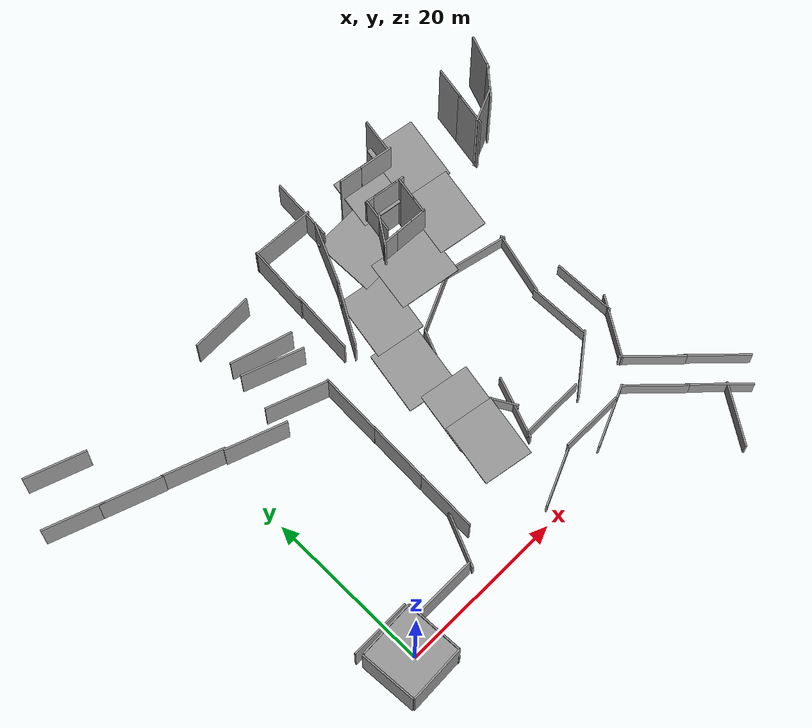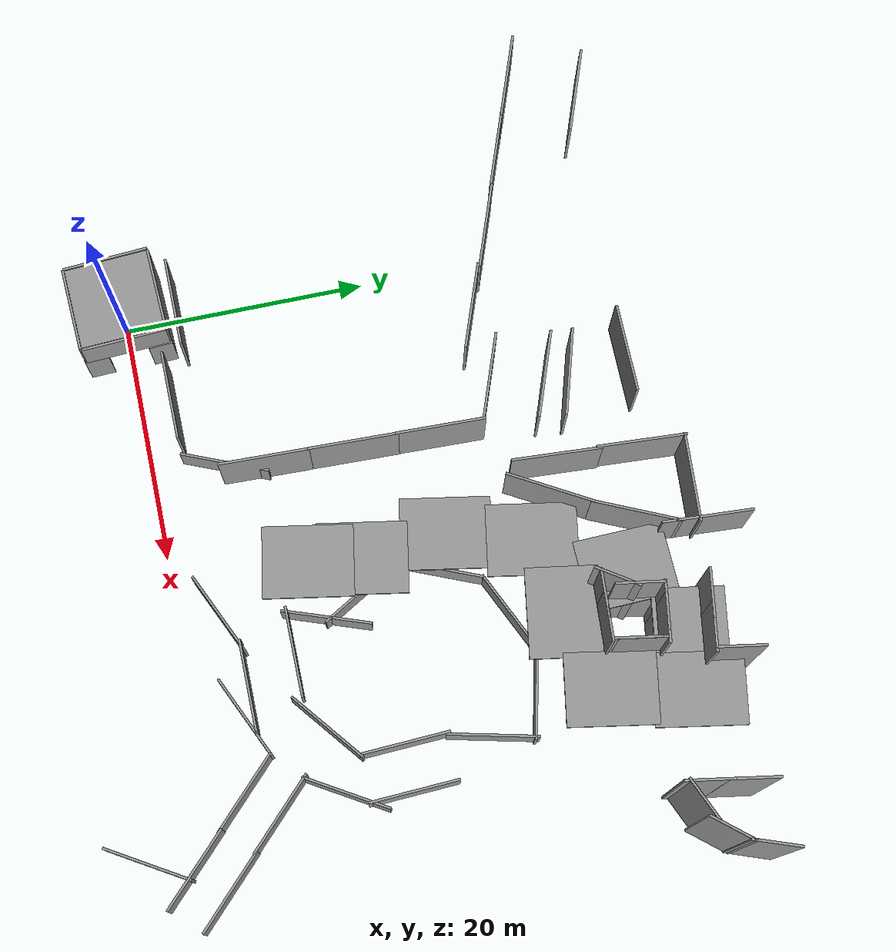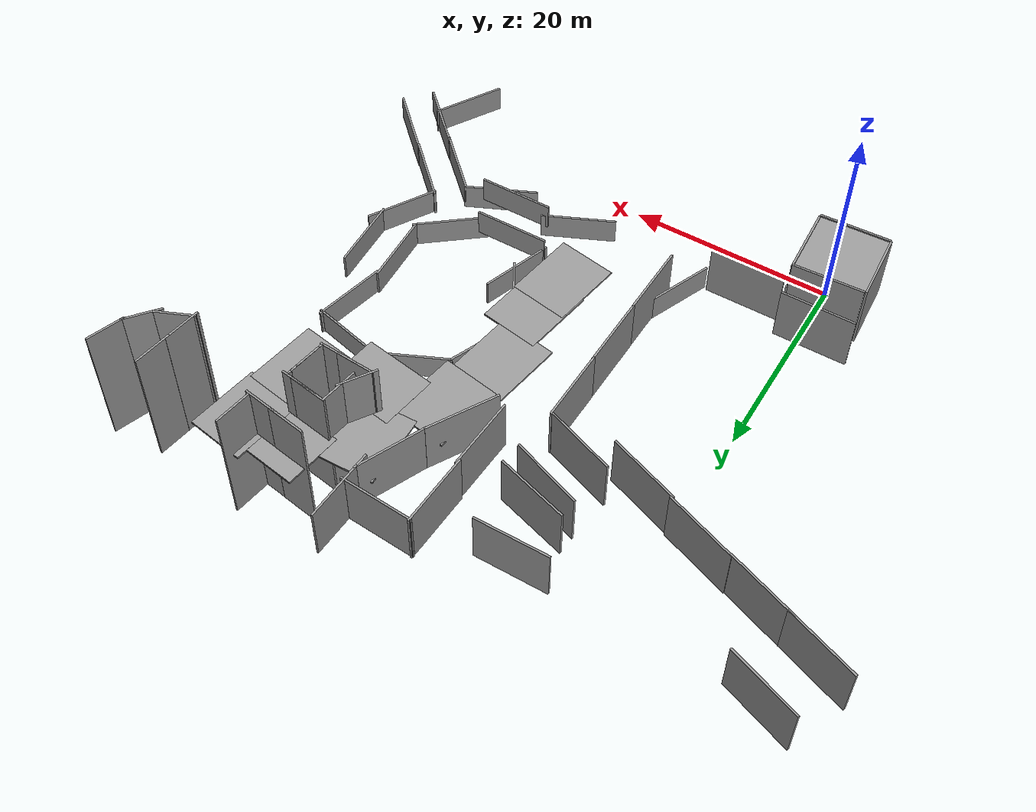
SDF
<sdf version="1.7">
 <world name="default">
  <model name="grey_wall">
   <static>1</static>
   <link name="link">
    <pose>0 0 0 0 -0 1.57</pose>
    <collision name="collision"><geometry><box><size>7 0.2 7</size></box></geometry></collision>
    <visual name="visual">
     <cast_shadows>0</cast_shadows>
     <geometry><box><size>7 0.2 7</size></box></geometry>
     <material>
      <script>
       <uri>model://grey_wall/materials/scripts</uri>
       <uri>model://grey_wall/materials/textures</uri>
       <name>vrc/grey_wall</name>
      </script>
     </material>
    </visual>
   </link>
   <pose>-4.21474 -0.21131 2.80388 0 -0 0.06614</pose>
  </model>
  <model name="grey_wall_clone">
   <static>1</static>
   <link name="link">
    <pose>0 0 0 0 -0 1.57</pose>
    <collision name="collision"><geometry><box><size>7 0.2 7</size></box></geometry></collision>
    <visual name="visual">
     <cast_shadows>0</cast_shadows>
     <geometry><box><size>7 0.2 7</size></box></geometry>
     <material>
      <script>
       <uri>model://grey_wall/materials/scripts</uri>
       <uri>model://grey_wall/materials/textures</uri>
       <name>vrc/grey_wall</name>
      </script>
     </material>
    </visual>
   </link>
   <pose>-0.45009 -3.58157 2.80388 0 -0 1.62041</pose>
  </model>
  <model name="grey_wall_clone_clone">
   <static>1</static>
   <link name="link">
    <pose>0 0 0 0 -0 1.57</pose>
    <collision name="collision"><geometry><box><size>7 0.2 7</size></box></geometry></collision>
    <visual name="visual">
     <cast_shadows>0</cast_shadows>
     <geometry><box><size>7 0.2 7</size></box></geometry>
     <material>
      <script>
       <uri>model://grey_wall/materials/scripts</uri>
       <uri>model://grey_wall/materials/textures</uri>
       <name>vrc/grey_wall</name>
      </script>
     </material>
    </visual>
   </link>
   <pose>-0.789169 3.46124 2.80388 0 -0 1.62041</pose>
  </model>
  <model name="grey_wall_0">
   <static>1</static>
   <link name="link">
    <pose>0 0 0 0 -0 1.57</pose>
    <collision name="collision"><geometry><box><size>7 0.2 3</size></box></geometry></collision>
    <visual name="visual">
     <cast_shadows>0</cast_shadows>
     <geometry><box><size>7 0.2 3</size></box></geometry>
     <material>
      <script>
       <uri>model://grey_wall/materials/scripts</uri>
       <uri>model://grey_wall/materials/textures</uri>
       <name>vrc/grey_wall</name>
      </script>
     </material>
    </visual>
   </link>
   <pose>2.8837 0.111936 4.63934 0 -0 0.05281</pose>
  </model>
  <model name="grey_wall_1">
   <static>1</static>
   <link name="link">
    <pose>0 0 0 0 -0 1.57</pose>
    <collision name="collision"><geometry><box><size>2 0.2 4</size></box></geometry></collision>
    <visual name="visual">
     <cast_shadows>0</cast_shadows>
     <geometry><box><size>2 0.2 4</size></box></geometry>
     <material>
      <script>
       <uri>model://grey_wall/materials/scripts</uri>
       <uri>model://grey_wall/materials/textures</uri>
       <name>vrc/grey_wall</name>
      </script>
     </material>
    </visual>
   </link>
   <pose>2.92834 -2.58106 1.18435 0 -0 0.04294</pose>
  </model>
  <model name="grey_wall_1_clone">
   <static>1</static>
   <link name="link">
    <pose>0 0 0 0 -0 1.57</pose>
    <collision name="collision"><geometry><box><size>2 0.2 4</size></box></geometry></collision>
    <visual name="visual">
     <cast_shadows>0</cast_shadows>
     <geometry><box><size>2 0.2 4</size></box></geometry>
     <material>
      <script>
       <uri>model://grey_wall/materials/scripts</uri>
       <uri>model://grey_wall/materials/textures</uri>
       <name>vrc/grey_wall</name>
      </script>
     </material>
    </visual>
   </link>
   <pose>2.84535 2.76369 1.18435 0 -0 0.06626</pose>
  </model>
  <model name="grey_wall_2">
   <static>1</static>
   <link name="link">
    <pose>0 0 0 1.57 -0 1.57</pose>
    <collision name="collision"><geometry><box><size>7 0.2 7</size></box></geometry></collision>
    <visual name="visual">
     <cast_shadows>0</cast_shadows>
     <geometry><box><size>7 0.2 7</size></box></geometry>
     <material>
      <script>
       <uri>model://grey_wall/materials/scripts</uri>
       <uri>model://grey_wall/materials/textures</uri>
       <name>vrc/grey_wall</name>
      </script>
     </material>
    </visual>
   </link>
   <pose>-0.748455 -0.059649 6.04997 0 -0 0.0551</pose>
  </model>
  <model name="grey_wall_3">
   <static>1</static>
   <link name="link">
    <pose>0 0 1.4 0 -0 0</pose>
    <collision name="collision"><geometry><box><size>7.5 0.2 2.8</size></box></geometry></collision>
    <visual name="visual">
     <cast_shadows>0</cast_shadows>
     <geometry><box><size>7.5 0.2 2.8</size></box></geometry>
     <material>
      <script>
       <uri>model://grey_wall/materials/scripts</uri>
       <uri>model://grey_wall/materials/textures</uri>
       <name>vrc/grey_wall</name>
      </script>
     </material>
    </visual>
   </link>
   <pose>36.6898 26.9895 -3.10734 0 0 -0.23228</pose>
  </model>
  <model name="grey_wall_3_clone">
   <static>1</static>
   <link name="link">
    <pose>0 0 1.4 0 -0 0</pose>
    <collision name="collision"><geometry><box><size>7.5 0.2 2.8</size></box></geometry></collision>
    <visual name="visual">
     <cast_shadows>0</cast_shadows>
     <geometry><box><size>7.5 0.2 2.8</size></box></geometry>
     <material>
      <script>
       <uri>model://grey_wall/materials/scripts</uri>
       <uri>model://grey_wall/materials/textures</uri>
       <name>vrc/grey_wall</name>
      </script>
     </material>
    </visual>
   </link>
   <pose>29.6771 8.62683 -1.75695 0 -0 0</pose>
  </model>
  <model name="grey_wall_3_clone_0">
   <static>1</static>
   <link name="link">
    <pose>0 0 1.4 0 -0 0</pose>
    <collision name="collision"><geometry><box><size>7.5 0.2 2.8</size></box></geometry></collision>
    <visual name="visual">
     <cast_shadows>0</cast_shadows>
     <geometry><box><size>7.5 0.2 2.8</size></box></geometry>
     <material>
      <script>
       <uri>model://grey_wall/materials/scripts</uri>
       <uri>model://grey_wall/materials/textures</uri>
       <name>vrc/grey_wall</name>
      </script>
     </material>
    </visual>
   </link>
   <pose>29.8267 26.3383 -3.10734 0 -0 0.42913</pose>
  </model>
  <model name="grey_wall_3_clone_1">
   <static>1</static>
   <link name="link">
    <pose>0 0 1.4 0 -0 0</pose>
    <collision name="collision"><geometry><box><size>7.5 0.2 2.8</size></box></geometry></collision>
    <visual name="visual">
     <cast_shadows>0</cast_shadows>
     <geometry><box><size>7.5 0.2 2.8</size></box></geometry>
     <material>
      <script>
       <uri>model://grey_wall/materials/scripts</uri>
       <uri>model://grey_wall/materials/textures</uri>
       <name>vrc/grey_wall</name>
      </script>
     </material>
    </visual>
   </link>
   <pose>25.1126 21.4242 -3.10734 0 0 -1.9675</pose>
  </model>
  <model name="grey_wall_3_clone_2">
   <static>1</static>
   <link name="link">
    <pose>0 0 1.4 0 -0 0</pose>
    <collision name="collision"><geometry><box><size>7.5 0.2 2.8</size></box></geometry></collision>
    <visual name="visual">
     <cast_shadows>0</cast_shadows>
     <geometry><box><size>7.5 0.2 2.8</size></box></geometry>
     <material>
      <script>
       <uri>model://grey_wall/materials/scripts</uri>
       <uri>model://grey_wall/materials/textures</uri>
       <name>vrc/grey_wall</name>
      </script>
     </material>
    </visual>
   </link>
   <pose>25.7291 14.8094 -3.10734 0 0 -1.04617</pose>
  </model>
  <model name="grey_wall_3_clone_2_clone">
   <static>1</static>
   <link name="link">
    <pose>0 0 1.4 0 -0 0</pose>
    <collision name="collision"><geometry><box><size>7.5 0.2 2.8</size></box></geometry></collision>
    <visual name="visual">
     <cast_shadows>0</cast_shadows>
     <geometry><box><size>7.5 0.2 2.8</size></box></geometry>
     <material>
      <script>
       <uri>model://grey_wall/materials/scripts</uri>
       <uri>model://grey_wall/materials/textures</uri>
       <name>vrc/grey_wall</name>
      </script>
     </material>
    </visual>
   </link>
   <pose>38.4258 15.8633 -3.10734 0 0 -1.5271</pose>
  </model>
  <model name="grey_wall_3_clone_2_clone_0">
   <static>1</static>
   <link name="link">
    <pose>0 0 1.4 0 -0 0</pose>
    <collision name="collision"><geometry><box><size>7.5 0.2 2.8</size></box></geometry></collision>
    <visual name="visual">
     <cast_shadows>0</cast_shadows>
     <geometry><box><size>7.5 0.2 2.8</size></box></geometry>
     <material>
      <script>
       <uri>model://grey_wall/materials/scripts</uri>
       <uri>model://grey_wall/materials/textures</uri>
       <name>vrc/grey_wall</name>
      </script>
     </material>
    </visual>
   </link>
   <pose>39.2763 22.8874 -3.10734 0 0 -1.80366</pose>
  </model>
  <model name="grey_wall_3_clone_2_clone_1">
   <static>1</static>
   <link name="link">
    <pose>0 0 1.4 0 -0 0</pose>
    <collision name="collision"><geometry><box><size>7.5 0.2 2.8</size></box></geometry></collision>
    <visual name="visual">
     <cast_shadows>0</cast_shadows>
     <geometry><box><size>7.5 0.2 2.8</size></box></geometry>
     <material>
      <script>
       <uri>model://grey_wall/materials/scripts</uri>
       <uri>model://grey_wall/materials/textures</uri>
       <name>vrc/grey_wall</name>
      </script>
     </material>
    </visual>
   </link>
   <pose>27.193 11.7026 -3.10734 0 0 -1.91355</pose>
  </model>
  <model name="grey_wall_3_clone_2_clone_2">
   <static>1</static>
   <link name="link">
    <pose>0 0 1.4 0 -0 0</pose>
    <collision name="collision"><geometry><box><size>7.5 0.2 2.8</size></box></geometry></collision>
    <visual name="visual">
     <cast_shadows>0</cast_shadows>
     <geometry><box><size>7.5 0.2 2.8</size></box></geometry>
     <material>
      <script>
       <uri>model://grey_wall/materials/scripts</uri>
       <uri>model://grey_wall/materials/textures</uri>
       <name>vrc/grey_wall</name>
      </script>
     </material>
    </visual>
   </link>
   <pose>35.906 10.0574 -3.10734 0 0 -2.47034</pose>
  </model>
  <model name="grey_wall_4_clone_0">
   <static>1</static>
   <link name="link">
    <pose>0 0 1.4 0 -0 0</pose>
    <collision name="collision"><geometry><box><size>7.5 0.2 6</size></box></geometry></collision>
    <visual name="visual">
     <cast_shadows>0</cast_shadows>
     <geometry><box><size>7.5 0.2 6</size></box></geometry>
     <material>
      <script>
       <uri>model://grey_wall/materials/scripts</uri>
       <uri>model://grey_wall/materials/textures</uri>
       <name>vrc/grey_wall</name>
      </script>
     </material>
    </visual>
   </link>
   <pose>10.8677 40.2516 -1.36031 0 -0 0</pose>
  </model>
  <model name="grey_wall_4_clone_5_clone_10">
   <static>1</static>
   <link name="link">
    <pose>0 0 1.4 0 -0 0</pose>
    <collision name="collision"><geometry><box><size>7.5 0.2 6</size></box></geometry></collision>
    <visual name="visual">
     <cast_shadows>0</cast_shadows>
     <geometry><box><size>7.5 0.2 6</size></box></geometry>
     <material>
      <script>
       <uri>model://grey_wall/materials/scripts</uri>
       <uri>model://grey_wall/materials/textures</uri>
       <name>vrc/grey_wall</name>
      </script>
     </material>
    </visual>
   </link>
   <pose>26.0391 43.3199 -1.36031 0 0 -1.63235</pose>
  </model>
  <model name="grey_wall_4_clone_5_clone_11">
   <static>1</static>
   <link name="link">
    <pose>0 0 1.4 0 -0 0</pose>
    <collision name="collision"><geometry><box><size>7.5 0.2 6</size></box></geometry></collision>
    <visual name="visual">
     <cast_shadows>0</cast_shadows>
     <geometry><box><size>7.5 0.2 6</size></box></geometry>
     <material>
      <script>
       <uri>model://grey_wall/materials/scripts</uri>
       <uri>model://grey_wall/materials/textures</uri>
       <name>vrc/grey_wall</name>
      </script>
     </material>
    </visual>
   </link>
   <pose>24.4499 37.8323 -1.36031 0 0 -1.99581</pose>
  </model>
  <model name="grey_wall_4_clone_5_clone_12">
   <static>1</static>
   <link name="link">
    <pose>0 0 1.4 0 -0 0</pose>
    <collision name="collision"><geometry><box><size>7.5 0.2 6</size></box></geometry></collision>
    <visual name="visual">
     <cast_shadows>0</cast_shadows>
     <geometry><box><size>7.5 0.2 6</size></box></geometry>
     <material>
      <script>
       <uri>model://grey_wall/materials/scripts</uri>
       <uri>model://grey_wall/materials/textures</uri>
       <name>vrc/grey_wall</name>
      </script>
     </material>
    </visual>
   </link>
   <pose>21.1469 31.4317 -1.36031 0 0 -2.09189</pose>
  </model>
  <model name="grey_wall_4_clone_5_clone_13">
   <static>1</static>
   <link name="link">
    <pose>0 0 1.4 0 -0 0</pose>
    <collision name="collision"><geometry><box><size>7.5 0.2 6</size></box></geometry></collision>
    <visual name="visual">
     <cast_shadows>0</cast_shadows>
     <geometry><box><size>7.5 0.2 6</size></box></geometry>
     <material>
      <script>
       <uri>model://grey_wall/materials/scripts</uri>
       <uri>model://grey_wall/materials/textures</uri>
       <name>vrc/grey_wall</name>
      </script>
     </material>
    </visual>
   </link>
   <pose>18.8306 39.5838 -1.36031 0 0 -1.63235</pose>
  </model>
  <model name="grey_wall_4_clone_5_clone_14">
   <static>1</static>
   <link name="link">
    <pose>0 0 1.4 0 -0 0</pose>
    <collision name="collision"><geometry><box><size>7.5 0.2 6</size></box></geometry></collision>
    <visual name="visual">
     <cast_shadows>0</cast_shadows>
     <geometry><box><size>7.5 0.2 6</size></box></geometry>
     <material>
      <script>
       <uri>model://grey_wall/materials/scripts</uri>
       <uri>model://grey_wall/materials/textures</uri>
       <name>vrc/grey_wall</name>
      </script>
     </material>
    </visual>
   </link>
   <pose>18.5329 32.5931 -1.36031 0 0 -1.63235</pose>
  </model>
  <model name="grey_wall_4_clone_5_clone_16">
   <static>1</static>
   <link name="link">
    <pose>0 0 1.4 0 -0 0</pose>
    <collision name="collision"><geometry><box><size>7.5 0.2 6</size></box></geometry></collision>
    <visual name="visual">
     <cast_shadows>0</cast_shadows>
     <geometry><box><size>7.5 0.2 6</size></box></geometry>
     <material>
      <script>
       <uri>model://grey_wall/materials/scripts</uri>
       <uri>model://grey_wall/materials/textures</uri>
       <name>vrc/grey_wall</name>
      </script>
     </material>
    </visual>
   </link>
   <pose>22.6409 42.8769 -1.36031 0 0 -0.067363</pose>
  </model>
  <model name="grey_wall_4_clone_0_clone">
   <static>1</static>
   <link name="link">
    <pose>0 0 1.4 0 -0 0</pose>
    <collision name="collision"><geometry><box><size>7.5 0.2 6</size></box></geometry></collision>
    <visual name="visual">
     <cast_shadows>0</cast_shadows>
     <geometry><box><size>7.5 0.2 6</size></box></geometry>
     <material>
      <script>
       <uri>model://grey_wall/materials/scripts</uri>
       <uri>model://grey_wall/materials/textures</uri>
       <name>vrc/grey_wall</name>
      </script>
     </material>
    </visual>
   </link>
   <pose>11.8576 35.1709 -1.36031 0 0 -0.293082</pose>
  </model>
  <model name="grey_wall_4_clone_0_clone_0">
   <static>1</static>
   <link name="link">
    <pose>0 0 1.4 0 -0 0</pose>
    <collision name="collision"><geometry><box><size>7.5 0.2 6</size></box></geometry></collision>
    <visual name="visual">
     <cast_shadows>0</cast_shadows>
     <geometry><box><size>7.5 0.2 6</size></box></geometry>
     <material>
      <script>
       <uri>model://grey_wall/materials/scripts</uri>
       <uri>model://grey_wall/materials/textures</uri>
       <name>vrc/grey_wall</name>
      </script>
     </material>
    </visual>
   </link>
   <pose>11.6182 33.1775 -1.36031 0 0 -0.351253</pose>
  </model>
  <model name="grey_wall_4_clone_0_clone_1">
   <static>1</static>
   <link name="link">
    <pose>0 0 1.4 0 -0 0</pose>
    <collision name="collision"><geometry><box><size>7.5 0.2 6</size></box></geometry></collision>
    <visual name="visual">
     <cast_shadows>0</cast_shadows>
     <geometry><box><size>7.5 0.2 6</size></box></geometry>
     <material>
      <script>
       <uri>model://grey_wall/materials/scripts</uri>
       <uri>model://grey_wall/materials/textures</uri>
       <name>vrc/grey_wall</name>
      </script>
     </material>
    </visual>
   </link>
   <pose>14.2703 23.8615 -1.36031 0 0 -1.59956</pose>
  </model>
  <model name="grey_wall_4_clone_0_clone_1_clone">
   <static>1</static>
   <link name="link">
    <pose>0 0 1.4 0 -0 0</pose>
    <collision name="collision"><geometry><box><size>7.5 0.2 6</size></box></geometry></collision>
    <visual name="visual">
     <cast_shadows>0</cast_shadows>
     <geometry><box><size>7.5 0.2 6</size></box></geometry>
     <material>
      <script>
       <uri>model://grey_wall/materials/scripts</uri>
       <uri>model://grey_wall/materials/textures</uri>
       <name>vrc/grey_wall</name>
      </script>
     </material>
    </visual>
   </link>
   <pose>14.0835 16.6333 -1.36031 0 0 -1.59956</pose>
  </model>
  <model name="grey_wall_4_clone_0_clone_1_clone_0">
   <static>1</static>
   <link name="link">
    <pose>0 0 1.4 0 -0 0</pose>
    <collision name="collision"><geometry><box><size>7.5 0.2 6</size></box></geometry></collision>
    <visual name="visual">
     <cast_shadows>0</cast_shadows>
     <geometry><box><size>7.5 0.2 6</size></box></geometry>
     <material>
      <script>
       <uri>model://grey_wall/materials/scripts</uri>
       <uri>model://grey_wall/materials/textures</uri>
       <name>vrc/grey_wall</name>
      </script>
     </material>
    </visual>
   </link>
   <pose>13.889 9.28364 -1.36031 0 0 -1.59956</pose>
  </model>
  <model name="grey_wall_4_clone_0_clone_0_clone">
   <static>1</static>
   <link name="link">
    <pose>0 0 1.4 0 -0 0</pose>
    <collision name="collision"><geometry><box><size>7.5 0.2 6</size></box></geometry></collision>
    <visual name="visual">
     <cast_shadows>0</cast_shadows>
     <geometry><box><size>7.5 0.2 6</size></box></geometry>
     <material>
      <script>
       <uri>model://grey_wall/materials/scripts</uri>
       <uri>model://grey_wall/materials/textures</uri>
       <name>vrc/grey_wall</name>
      </script>
     </material>
    </visual>
   </link>
   <pose>10.9004 28.6993 -1.36031 0 0 -0.351253</pose>
  </model>
  <model name="grey_wall_4_clone_0_clone_0_clone_0">
   <static>1</static>
   <link name="link">
    <pose>0 0 1.4 0 -0 0</pose>
    <collision name="collision"><geometry><box><size>7.5 0.2 6</size></box></geometry></collision>
    <visual name="visual">
     <cast_shadows>0</cast_shadows>
     <geometry><box><size>7.5 0.2 6</size></box></geometry>
     <material>
      <script>
       <uri>model://grey_wall/materials/scripts</uri>
       <uri>model://grey_wall/materials/textures</uri>
       <name>vrc/grey_wall</name>
      </script>
     </material>
    </visual>
   </link>
   <pose>4.61691 28.5572 -1.36031 0 0 -0.351253</pose>
  </model>
  <model name="grey_wall_4_clone_0_clone_0_clone_1">
   <static>1</static>
   <link name="link">
    <pose>0 0 1.4 0 -0 0</pose>
    <collision name="collision"><geometry><box><size>7.5 0.2 6</size></box></geometry></collision>
    <visual name="visual">
     <cast_shadows>0</cast_shadows>
     <geometry><box><size>7.5 0.2 6</size></box></geometry>
     <material>
      <script>
       <uri>model://grey_wall/materials/scripts</uri>
       <uri>model://grey_wall/materials/textures</uri>
       <name>vrc/grey_wall</name>
      </script>
     </material>
    </visual>
   </link>
   <pose>-2.08883 31.1935 -1.36031 0 0 -0.351253</pose>
  </model>
  <model name="grey_wall_4_clone_0_clone_0_clone_2">
   <static>1</static>
   <link name="link">
    <pose>0 0 1.4 0 -0 0</pose>
    <collision name="collision"><geometry><box><size>7.5 0.2 6</size></box></geometry></collision>
    <visual name="visual">
     <cast_shadows>0</cast_shadows>
     <geometry><box><size>7.5 0.2 6</size></box></geometry>
     <material>
      <script>
       <uri>model://grey_wall/materials/scripts</uri>
       <uri>model://grey_wall/materials/textures</uri>
       <name>vrc/grey_wall</name>
      </script>
     </material>
    </visual>
   </link>
   <pose>-8.90977 33.6237 -1.36031 0 0 -0.351253</pose>
  </model>
  <model name="grey_wall_4_clone_0_clone_0_clone_3">
   <static>1</static>
   <link name="link">
    <pose>0 0 1.4 0 -0 0</pose>
    <collision name="collision"><geometry><box><size>7.5 0.2 6</size></box></geometry></collision>
    <visual name="visual">
     <cast_shadows>0</cast_shadows>
     <geometry><box><size>7.5 0.2 6</size></box></geometry>
     <material>
      <script>
       <uri>model://grey_wall/materials/scripts</uri>
       <uri>model://grey_wall/materials/textures</uri>
       <name>vrc/grey_wall</name>
      </script>
     </material>
    </visual>
   </link>
   <pose>-15.1705 35.9303 -1.36031 0 0 -0.351253</pose>
  </model>
  <model name="grey_wall_4_clone_0_clone_0_clone_4">
   <static>1</static>
   <link name="link">
    <pose>0 0 1.4 0 -0 0</pose>
    <collision name="collision"><geometry><box><size>7.5 0.2 6</size></box></geometry></collision>
    <visual name="visual">
     <cast_shadows>0</cast_shadows>
     <geometry><box><size>7.5 0.2 6</size></box></geometry>
     <material>
      <script>
       <uri>model://grey_wall/materials/scripts</uri>
       <uri>model://grey_wall/materials/textures</uri>
       <name>vrc/grey_wall</name>
      </script>
     </material>
    </visual>
   </link>
   <pose>-12.7232 41.42 -1.36031 0 0 -0.351253</pose>
  </model>
  <model name="grey_wall_4_clone_0_clone_0_clone_6">
   <static>1</static>
   <link name="link">
    <pose>0 0 1.4 0 -0 0</pose>
    <collision name="collision"><geometry><box><size>7.5 0.2 6</size></box></geometry></collision>
    <visual name="visual">
     <cast_shadows>0</cast_shadows>
     <geometry><box><size>7.5 0.2 6</size></box></geometry>
     <material>
      <script>
       <uri>model://grey_wall/materials/scripts</uri>
       <uri>model://grey_wall/materials/textures</uri>
       <name>vrc/grey_wall</name>
      </script>
     </material>
    </visual>
   </link>
   <pose>-0.78334 4.38162 -1.36031 0 -0 0.004291</pose>
  </model>
  <model name="grey_wall_4_clone_0_clone_0_clone_6_clone">
   <static>1</static>
   <link name="link">
    <pose>0 0 1.4 0 -0 0</pose>
    <collision name="collision"><geometry><box><size>7.5 0.2 6</size></box></geometry></collision>
    <visual name="visual">
     <cast_shadows>0</cast_shadows>
     <geometry><box><size>7.5 0.2 6</size></box></geometry>
     <material>
      <script>
       <uri>model://grey_wall/materials/scripts</uri>
       <uri>model://grey_wall/materials/textures</uri>
       <name>vrc/grey_wall</name>
      </script>
     </material>
    </visual>
   </link>
   <pose>7.1515 2.73217 -1.36031 0 -0 0.004291</pose>
  </model>
  <model name="grey_wall_3_clone_1_clone">
   <static>1</static>
   <link name="link">
    <pose>0 0 1.4 0 -0 0</pose>
    <collision name="collision"><geometry><box><size>7.5 0.2 2.8</size></box></geometry></collision>
    <visual name="visual">
     <cast_shadows>0</cast_shadows>
     <geometry><box><size>7.5 0.2 2.8</size></box></geometry>
     <material>
      <script>
       <uri>model://grey_wall/materials/scripts</uri>
       <uri>model://grey_wall/materials/textures</uri>
       <name>vrc/grey_wall</name>
      </script>
     </material>
    </visual>
   </link>
   <pose>12.7235 5.94853 -3.10734 0 0 -1.9675</pose>
  </model>
  <model name="grey_wall_5">
   <static>1</static>
   <link name="link">
    <pose>0 0 1.4 0 -0 0</pose>
    <collision name="collision"><geometry><box><size>4 0.2 14</size></box></geometry></collision>
    <visual name="visual">
     <cast_shadows>0</cast_shadows>
     <geometry><box><size>4 0.2 14</size></box></geometry>
     <material>
      <script>
       <uri>model://grey_wall/materials/scripts</uri>
       <uri>model://grey_wall/materials/textures</uri>
       <name>vrc/grey_wall</name>
      </script>
     </material>
    </visual>
   </link>
   <pose>32.8154 33.2652 -2.67193 0 0 -0.060647</pose>
  </model>
  <model name="grey_wall_5_clone">
   <static>1</static>
   <link name="link">
    <pose>0 0 1.4 0 -0 0</pose>
    <collision name="collision"><geometry><box><size>4 0.2 14</size></box></geometry></collision>
    <visual name="visual">
     <cast_shadows>0</cast_shadows>
     <geometry><box><size>4 0.2 14</size></box></geometry>
     <material>
      <script>
       <uri>model://grey_wall/materials/scripts</uri>
       <uri>model://grey_wall/materials/textures</uri>
       <name>vrc/grey_wall</name>
      </script>
     </material>
    </visual>
   </link>
   <pose>30.9446 33.3905 -2.67193 0 0 -0.060647</pose>
  </model>
  <model name="grey_wall_5_clone_0">
   <static>1</static>
   <link name="link">
    <pose>0 0 1.4 0 -0 0</pose>
    <collision name="collision"><geometry><box><size>4 0.2 14</size></box></geometry></collision>
    <visual name="visual">
     <cast_shadows>0</cast_shadows>
     <geometry><box><size>4 0.2 14</size></box></geometry>
     <material>
      <script>
       <uri>model://grey_wall/materials/scripts</uri>
       <uri>model://grey_wall/materials/textures</uri>
       <name>vrc/grey_wall</name>
      </script>
     </material>
    </visual>
   </link>
   <pose>33.8551 37.7475 -2.67193 0 0 -0.158292</pose>
  </model>
  <model name="grey_wall_5_clone_0_clone">
   <static>1</static>
   <link name="link">
    <pose>0 0 1.4 0 -0 0</pose>
    <collision name="collision"><geometry><box><size>4 0.2 14</size></box></geometry></collision>
    <visual name="visual">
     <cast_shadows>0</cast_shadows>
     <geometry><box><size>4 0.2 14</size></box></geometry>
     <material>
      <script>
       <uri>model://grey_wall/materials/scripts</uri>
       <uri>model://grey_wall/materials/textures</uri>
       <name>vrc/grey_wall</name>
      </script>
     </material>
    </visual>
   </link>
   <pose>32.8311 37.9119 -2.67193 0 0 -0.158292</pose>
  </model>
  <model name="grey_wall_5_clone_0_clone_0">
   <static>1</static>
   <link name="link">
    <pose>0 0 1.4 0 -0 0</pose>
    <collision name="collision"><geometry><box><size>4 0.2 14</size></box></geometry></collision>
    <visual name="visual">
     <cast_shadows>0</cast_shadows>
     <geometry><box><size>4 0.2 14</size></box></geometry>
     <material>
      <script>
       <uri>model://grey_wall/materials/scripts</uri>
       <uri>model://grey_wall/materials/textures</uri>
       <name>vrc/grey_wall</name>
      </script>
     </material>
    </visual>
   </link>
   <pose>34.9781 35.5498 -2.67193 0 -0 1.40604</pose>
  </model>
  <model name="grey_wall_5_clone_0_clone_0_clone">
   <static>1</static>
   <link name="link">
    <pose>0 0 1.4 0 -0 0</pose>
    <collision name="collision"><geometry><box><size>4 0.2 14</size></box></geometry></collision>
    <visual name="visual">
     <cast_shadows>0</cast_shadows>
     <geometry><box><size>4 0.2 14</size></box></geometry>
     <material>
      <script>
       <uri>model://grey_wall/materials/scripts</uri>
       <uri>model://grey_wall/materials/textures</uri>
       <name>vrc/grey_wall</name>
      </script>
     </material>
    </visual>
   </link>
   <pose>34.8851 35.0596 -2.67193 0 -0 1.40604</pose>
  </model>
  <model name="grey_wall_5_clone_0_clone_0_clone_0">
   <static>1</static>
   <link name="link">
    <pose>0 0 1.4 0 -0 0</pose>
    <collision name="collision"><geometry><box><size>4 0.2 14</size></box></geometry></collision>
    <visual name="visual">
     <cast_shadows>0</cast_shadows>
     <geometry><box><size>4 0.2 14</size></box></geometry>
     <material>
      <script>
       <uri>model://grey_wall/materials/scripts</uri>
       <uri>model://grey_wall/materials/textures</uri>
       <name>vrc/grey_wall</name>
      </script>
     </material>
    </visual>
   </link>
   <pose>30.7061 36.2916 -2.67193 0 -0 1.40604</pose>
  </model>
  <model name="grey_wall_5_clone_0_clone_0_clone_1">
   <static>1</static>
   <link name="link">
    <pose>0 0 1.4 0 -0 0</pose>
    <collision name="collision"><geometry><box><size>4 0.2 14</size></box></geometry></collision>
    <visual name="visual">
     <cast_shadows>0</cast_shadows>
     <geometry><box><size>4 0.2 14</size></box></geometry>
     <material>
      <script>
       <uri>model://grey_wall/materials/scripts</uri>
       <uri>model://grey_wall/materials/textures</uri>
       <name>vrc/grey_wall</name>
      </script>
     </material>
    </visual>
   </link>
   <pose>29.862 34.6877 -2.67193 0 -0 0.982677</pose>
  </model>
  <model name="grey_wall_5_clone_0_clone_clone">
   <static>1</static>
   <link name="link">
    <pose>0 0 1.4 0 -0 0</pose>
    <collision name="collision"><geometry><box><size>4 0.2 14</size></box></geometry></collision>
    <visual name="visual">
     <cast_shadows>0</cast_shadows>
     <geometry><box><size>4 0.2 14</size></box></geometry>
     <material>
      <script>
       <uri>model://grey_wall/materials/scripts</uri>
       <uri>model://grey_wall/materials/textures</uri>
       <name>vrc/grey_wall</name>
      </script>
     </material>
    </visual>
   </link>
   <pose>35.3055 41.1248 -2.67193 0 0 -0.158292</pose>
  </model>
  <model name="grey_wall_5_clone_0_clone_clone_0">
   <static>1</static>
   <link name="link">
    <pose>0 0 1.4 0 -0 0</pose>
    <collision name="collision"><geometry><box><size>4 0.2 14</size></box></geometry></collision>
    <visual name="visual">
     <cast_shadows>0</cast_shadows>
     <geometry><box><size>4 0.2 14</size></box></geometry>
     <material>
      <script>
       <uri>model://grey_wall/materials/scripts</uri>
       <uri>model://grey_wall/materials/textures</uri>
       <name>vrc/grey_wall</name>
      </script>
     </material>
    </visual>
   </link>
   <pose>32.5983 41.5743 -2.67193 0 0 -0.158292</pose>
  </model>
  <model name="grey_wall_5_clone_0_clone_0_clone_clone_0">
   <static>1</static>
   <link name="link">
    <pose>0 0 1.4 0 -0 0</pose>
    <collision name="collision"><geometry><box><size>4 0.2 14</size></box></geometry></collision>
    <visual name="visual">
     <cast_shadows>0</cast_shadows>
     <geometry><box><size>4 0.2 14</size></box></geometry>
     <material>
      <script>
       <uri>model://grey_wall/materials/scripts</uri>
       <uri>model://grey_wall/materials/textures</uri>
       <name>vrc/grey_wall</name>
      </script>
     </material>
    </visual>
   </link>
   <pose>37.1944 42.8134 -2.67193 0 -0 1.40604</pose>
  </model>
  <model name="grey_wall_3_clone_2_clone_clone">
   <static>1</static>
   <link name="link">
    <pose>0 0 1.4 0 -0 0</pose>
    <collision name="collision"><geometry><box><size>7.5 0.2 2.8</size></box></geometry></collision>
    <visual name="visual">
     <cast_shadows>0</cast_shadows>
     <geometry><box><size>7.5 0.2 2.8</size></box></geometry>
     <material>
      <script>
       <uri>model://grey_wall/materials/scripts</uri>
       <uri>model://grey_wall/materials/textures</uri>
       <name>vrc/grey_wall</name>
      </script>
     </material>
    </visual>
   </link>
   <pose>42.2982 15.8318 -3.10734 0 0 -1.5271</pose>
  </model>
  <model name="grey_wall_3_clone_2_clone_2_clone">
   <static>1</static>
   <link name="link">
    <pose>0 0 1.4 0 -0 0</pose>
    <collision name="collision"><geometry><box><size>7.5 0.2 2.8</size></box></geometry></collision>
    <visual name="visual">
     <cast_shadows>0</cast_shadows>
     <geometry><box><size>7.5 0.2 2.8</size></box></geometry>
     <material>
      <script>
       <uri>model://grey_wall/materials/scripts</uri>
       <uri>model://grey_wall/materials/textures</uri>
       <name>vrc/grey_wall</name>
      </script>
     </material>
    </visual>
   </link>
   <pose>41.3091 10.5346 -3.10734 0 0 -2.11144</pose>
  </model>
  <model name="grey_wall_3_clone_2_clone_2_clone_0">
   <static>1</static>
   <link name="link">
    <pose>0 0 1.4 0 -0 0</pose>
    <collision name="collision"><geometry><box><size>7.5 0.2 2.8</size></box></geometry></collision>
    <visual name="visual">
     <cast_shadows>0</cast_shadows>
     <geometry><box><size>7.5 0.2 2.8</size></box></geometry>
     <material>
      <script>
       <uri>model://grey_wall/materials/scripts</uri>
       <uri>model://grey_wall/materials/textures</uri>
       <name>vrc/grey_wall</name>
      </script>
     </material>
    </visual>
   </link>
   <pose>33.7883 3.76654 -3.10734 0 0 -2.71756</pose>
  </model>
  <model name="grey_wall_3_clone_clone">
   <static>1</static>
   <link name="link">
    <pose>0 0 1.4 0 -0 0</pose>
    <collision name="collision"><geometry><box><size>7.5 0.2 2.8</size></box></geometry></collision>
    <visual name="visual">
     <cast_shadows>0</cast_shadows>
     <geometry><box><size>7.5 0.2 2.8</size></box></geometry>
     <material>
      <script>
       <uri>model://grey_wall/materials/scripts</uri>
       <uri>model://grey_wall/materials/textures</uri>
       <name>vrc/grey_wall</name>
      </script>
     </material>
    </visual>
   </link>
   <pose>31.5653 4.54682 -1.75695 0 -0 0</pose>
  </model>
  <model name="grey_wall_3_clone_2_clone_2_clone_0_clone">
   <static>1</static>
   <link name="link">
    <pose>0 0 1.4 0 -0 0</pose>
    <collision name="collision"><geometry><box><size>7.5 0.2 2.8</size></box></geometry></collision>
    <visual name="visual">
     <cast_shadows>0</cast_shadows>
     <geometry><box><size>7.5 0.2 2.8</size></box></geometry>
     <material>
      <script>
       <uri>model://grey_wall/materials/scripts</uri>
       <uri>model://grey_wall/materials/textures</uri>
       <name>vrc/grey_wall</name>
      </script>
     </material>
    </visual>
   </link>
   <pose>25.1216 3.20359 -3.10734 0 0 -2.71756</pose>
  </model>
  <model name="grey_wall_3_clone_2_clone_3">
   <static>1</static>
   <link name="link">
    <pose>0 0 1.4 0 -0 0</pose>
    <collision name="collision"><geometry><box><size>7.5 0.2 2.8</size></box></geometry></collision>
    <visual name="visual">
     <cast_shadows>0</cast_shadows>
     <geometry><box><size>7.5 0.2 2.8</size></box></geometry>
     <material>
      <script>
       <uri>model://grey_wall/materials/scripts</uri>
       <uri>model://grey_wall/materials/textures</uri>
       <name>vrc/grey_wall</name>
      </script>
     </material>
    </visual>
   </link>
   <pose>41.8874 5.10714 -3.10734 0 0 -0.776043</pose>
  </model>
  <model name="grey_wall_3_clone_2_clone_3_clone">
   <static>1</static>
   <link name="link">
    <pose>0 0 1.4 0 -0 0</pose>
    <collision name="collision"><geometry><box><size>7.5 0.2 2.8</size></box></geometry></collision>
    <visual name="visual">
     <cast_shadows>0</cast_shadows>
     <geometry><box><size>7.5 0.2 2.8</size></box></geometry>
     <material>
      <script>
       <uri>model://grey_wall/materials/scripts</uri>
       <uri>model://grey_wall/materials/textures</uri>
       <name>vrc/grey_wall</name>
      </script>
     </material>
    </visual>
   </link>
   <pose>46.9974 0.18791 -3.10734 0 0 -0.776043</pose>
  </model>
  <model name="grey_wall_3_clone_2_clone_3_clone_0">
   <static>1</static>
   <link name="link">
    <pose>0 0 1.4 0 -0 0</pose>
    <collision name="collision"><geometry><box><size>7.5 0.2 2.8</size></box></geometry></collision>
    <visual name="visual">
     <cast_shadows>0</cast_shadows>
     <geometry><box><size>7.5 0.2 2.8</size></box></geometry>
     <material>
      <script>
       <uri>model://grey_wall/materials/scripts</uri>
       <uri>model://grey_wall/materials/textures</uri>
       <name>vrc/grey_wall</name>
      </script>
     </material>
    </visual>
   </link>
   <pose>39.6727 2.66865 -3.10734 0 0 -0.776043</pose>
  </model>
  <model name="grey_wall_3_clone_2_clone_3_clone_1">
   <static>1</static>
   <link name="link">
    <pose>0 0 1.4 0 -0 0</pose>
    <collision name="collision"><geometry><box><size>7.5 0.2 2.8</size></box></geometry></collision>
    <visual name="visual">
     <cast_shadows>0</cast_shadows>
     <geometry><box><size>7.5 0.2 2.8</size></box></geometry>
     <material>
      <script>
       <uri>model://grey_wall/materials/scripts</uri>
       <uri>model://grey_wall/materials/textures</uri>
       <name>vrc/grey_wall</name>
      </script>
     </material>
    </visual>
   </link>
   <pose>44.743 -2.23438 -3.10734 0 0 -0.776043</pose>
  </model>
  <model name="grey_wall_3_clone_2_clone_2_clone_clone">
   <static>1</static>
   <link name="link">
    <pose>0 0 1.4 0 -0 0</pose>
    <collision name="collision"><geometry><box><size>7.5 0.2 2.8</size></box></geometry></collision>
    <visual name="visual">
     <cast_shadows>0</cast_shadows>
     <geometry><box><size>7.5 0.2 2.8</size></box></geometry>
     <material>
      <script>
       <uri>model://grey_wall/materials/scripts</uri>
       <uri>model://grey_wall/materials/textures</uri>
       <name>vrc/grey_wall</name>
      </script>
     </material>
    </visual>
   </link>
   <pose>43.5439 -5.76873 -3.10734 0 0 -2.11144</pose>
  </model>
  <model name="grey_wall_5_clone_0_clone_0_clone_clone_0_clone">
   <static>1</static>
   <link name="link">
    <pose>0 0 1.4 0 -0 0</pose>
    <collision name="collision"><geometry><box><size>4 0.2 14</size></box></geometry></collision>
    <visual name="visual">
     <cast_shadows>0</cast_shadows>
     <geometry><box><size>4 0.2 14</size></box></geometry>
     <material>
      <script>
       <uri>model://grey_wall/materials/scripts</uri>
       <uri>model://grey_wall/materials/textures</uri>
       <name>vrc/grey_wall</name>
      </script>
     </material>
    </visual>
   </link>
   <pose>47.2062 41.3259 -2.67193 0 -0 1.40604</pose>
  </model>
  <model name="grey_wall_5_clone_0_clone_0_clone_clone_0_clone_0">
   <static>1</static>
   <link name="link">
    <pose>0 0 1.4 0 -0 0</pose>
    <collision name="collision"><geometry><box><size>4 0.2 14</size></box></geometry></collision>
    <visual name="visual">
     <cast_shadows>0</cast_shadows>
     <geometry><box><size>4 0.2 14</size></box></geometry>
     <material>
      <script>
       <uri>model://grey_wall/materials/scripts</uri>
       <uri>model://grey_wall/materials/textures</uri>
       <name>vrc/grey_wall</name>
      </script>
     </material>
    </visual>
   </link>
   <pose>46.6239 37.8879 -2.67193 0 -0 1.40604</pose>
  </model>
  <model name="grey_wall_5_clone_0_clone_0_clone_clone_0_clone_4">
   <static>1</static>
   <link name="link">
    <pose>0 0 1.4 0 -0 0</pose>
    <collision name="collision"><geometry><box><size>4 0.2 14</size></box></geometry></collision>
    <visual name="visual">
     <cast_shadows>0</cast_shadows>
     <geometry><box><size>4 0.2 14</size></box></geometry>
     <material>
      <script>
       <uri>model://grey_wall/materials/scripts</uri>
       <uri>model://grey_wall/materials/textures</uri>
       <name>vrc/grey_wall</name>
      </script>
     </material>
    </visual>
   </link>
   <pose>52.2341 41.6873 -2.67193 0 -0 1.22269</pose>
  </model>
  <model name="grey_wall_5_clone_0_clone_0_clone_clone_0_clone_5">
   <static>1</static>
   <link name="link">
    <pose>0 0 1.4 0 -0 0</pose>
    <collision name="collision"><geometry><box><size>4 0.2 14</size></box></geometry></collision>
    <visual name="visual">
     <cast_shadows>0</cast_shadows>
     <geometry><box><size>4 0.2 14</size></box></geometry>
     <material>
      <script>
       <uri>model://grey_wall/materials/scripts</uri>
       <uri>model://grey_wall/materials/textures</uri>
       <name>vrc/grey_wall</name>
      </script>
     </material>
    </visual>
   </link>
   <pose>50.4929 38.7044 -2.67193 0 -0 0.87306</pose>
  </model>
  <model name="grey_wall_5_clone_0_clone_0_clone_clone_0_clone_6">
   <static>1</static>
   <link name="link">
    <pose>0 0 1.4 0 -0 0</pose>
    <collision name="collision"><geometry><box><size>4 0.2 14</size></box></geometry></collision>
    <visual name="visual">
     <cast_shadows>0</cast_shadows>
     <geometry><box><size>4 0.2 14</size></box></geometry>
     <material>
      <script>
       <uri>model://grey_wall/materials/scripts</uri>
       <uri>model://grey_wall/materials/textures</uri>
       <name>vrc/grey_wall</name>
      </script>
     </material>
    </visual>
   </link>
   <pose>47.994 37.1356 -2.67193 0 -0 0.4064</pose>
  </model>
  <model name="grey_wall_4_clone_5_clone_0_clone_clone_clone_clone_2_clone_0">
   <static>1</static>
   <link name="link">
    <pose>0 0 1.4 0 -0 0</pose>
    <collision name="collision"><geometry><box><size>7.5 0.2 6</size></box></geometry></collision>
    <visual name="visual">
     <cast_shadows>0</cast_shadows>
     <geometry><box><size>7.5 0.2 6</size></box></geometry>
     <material>
      <script>
       <uri>model://grey_wall/materials/scripts</uri>
       <uri>model://grey_wall/materials/textures</uri>
       <name>vrc/grey_wall</name>
      </script>
     </material>
    </visual>
   </link>
   <pose>29.5819 36.399 -0.252557 1.57003 0.000212 -1.54472</pose>
  </model>
  <model name="grey_wall_4_clone_5_clone_0_clone_clone_clone_clone_2_clone_1">
   <static>1</static>
   <link name="link">
    <pose>0 0 1.4 0 -0 0</pose>
    <collision name="collision"><geometry><box><size>7.5 0.2 6</size></box></geometry></collision>
    <visual name="visual">
     <cast_shadows>0</cast_shadows>
     <geometry><box><size>7.5 0.2 6</size></box></geometry>
     <material>
      <script>
       <uri>model://grey_wall/materials/scripts</uri>
       <uri>model://grey_wall/materials/textures</uri>
       <name>vrc/grey_wall</name>
      </script>
     </material>
    </visual>
   </link>
   <pose>34.7347 41.6011 -0.252557 1.57086 0.000792 -0.160764</pose>
  </model>
  <model name="grey_wall_4_clone_5_clone_0_clone_clone_clone_clone_2_clone_1_clone_0_clone">
   <static>1</static>
   <link name="link">
    <pose>0 0 1.4 0 -0 0</pose>
    <collision name="collision"><geometry><box><size>7.5 0.2 6</size></box></geometry></collision>
    <visual name="visual">
     <cast_shadows>0</cast_shadows>
     <geometry><box><size>7.5 0.2 6</size></box></geometry>
     <material>
      <script>
       <uri>model://grey_wall/materials/scripts</uri>
       <uri>model://grey_wall/materials/textures</uri>
       <name>vrc/grey_wall</name>
      </script>
     </material>
    </visual>
   </link>
   <pose>40.4355 39.5669 -0.252557 1.57 5.4e-05 -1.74331</pose>
  </model>
  <model name="grey_wall_4_clone_5_clone_0_clone_clone_clone_clone_2_clone_1_clone_0_clone_0">
   <static>1</static>
   <link name="link">
    <pose>0 0 1.4 0 -0 0</pose>
    <collision name="collision"><geometry><box><size>7.5 0.2 6</size></box></geometry></collision>
    <visual name="visual">
     <cast_shadows>0</cast_shadows>
     <geometry><box><size>7.5 0.2 6</size></box></geometry>
     <material>
      <script>
       <uri>model://grey_wall/materials/scripts</uri>
       <uri>model://grey_wall/materials/textures</uri>
       <name>vrc/grey_wall</name>
      </script>
     </material>
    </visual>
   </link>
   <pose>38.9752 32.669 -0.252557 1.57 5.4e-05 -1.74331</pose>
  </model>
  <model name="grey_wall_4_clone_5_clone_0_clone_clone_clone_clone_2_clone_1_clone_1">
   <static>1</static>
   <link name="link">
    <pose>0 0 1.4 0 -0 0</pose>
    <collision name="collision"><geometry><box><size>7.5 0.2 6</size></box></geometry></collision>
    <visual name="visual">
     <cast_shadows>0</cast_shadows>
     <geometry><box><size>7.5 0.2 6</size></box></geometry>
     <material>
      <script>
       <uri>model://grey_wall/materials/scripts</uri>
       <uri>model://grey_wall/materials/textures</uri>
       <name>vrc/grey_wall</name>
      </script>
     </material>
    </visual>
   </link>
   <pose>30.9749 31.9508 -0.252557 1.57086 0.000792 -0.160764</pose>
  </model>
  <model name="grey_wall_4_clone_5_clone_0_clone_clone_clone_clone_2_clone_1_clone_0_clone_0_clone">
   <static>1</static>
   <link name="link">
    <pose>0 0 1.4 0 -0 0</pose>
    <collision name="collision"><geometry><box><size>7.5 0.2 6</size></box></geometry></collision>
    <visual name="visual">
     <cast_shadows>0</cast_shadows>
     <geometry><box><size>7.5 0.2 6</size></box></geometry>
     <material>
      <script>
       <uri>model://grey_wall/materials/scripts</uri>
       <uri>model://grey_wall/materials/textures</uri>
       <name>vrc/grey_wall</name>
      </script>
     </material>
    </visual>
   </link>
   <pose>25.7233 29.1488 -0.252557 1.57 5.4e-05 -1.74331</pose>
  </model>
  <model name="grey_wall_4_clone_5_clone_0_clone_clone_clone_clone_2_clone_1_clone_0_clone_0_clone_0">
   <static>1</static>
   <link name="link">
    <pose>0 0 1.4 0 -0 0</pose>
    <collision name="collision"><geometry><box><size>7.5 0.2 6</size></box></geometry></collision>
    <visual name="visual">
     <cast_shadows>0</cast_shadows>
     <geometry><box><size>7.5 0.2 6</size></box></geometry>
     <material>
      <script>
       <uri>model://grey_wall/materials/scripts</uri>
       <uri>model://grey_wall/materials/textures</uri>
       <name>vrc/grey_wall</name>
      </script>
     </material>
    </visual>
   </link>
   <pose>23.7914 22.3504 -0.252557 1.57 5.4e-05 -1.74331</pose>
  </model>
  <model name="grey_wall_4_clone_5_clone_0_clone_clone_clone_clone_2_clone_1_clone_0_clone_0_clone_1">
   <static>1</static>
   <link name="link">
    <pose>0 0 1.4 0 -0 0</pose>
    <collision name="collision"><geometry><box><size>7.5 0.2 6</size></box></geometry></collision>
    <visual name="visual">
     <cast_shadows>0</cast_shadows>
     <geometry><box><size>7.5 0.2 6</size></box></geometry>
     <material>
      <script>
       <uri>model://grey_wall/materials/scripts</uri>
       <uri>model://grey_wall/materials/textures</uri>
       <name>vrc/grey_wall</name>
      </script>
     </material>
    </visual>
   </link>
   <pose>24.4357 15.2523 -0.252557 1.57 5.4e-05 -1.74331</pose>
  </model>
  <model name="grey_wall_4_clone_5_clone_0_clone_clone_clone_clone_2_clone_1_clone_0_clone_0_clone_2">
   <static>1</static>
   <link name="link">
    <pose>0 0 1.4 0 -0 0</pose>
    <collision name="collision"><geometry><box><size>7.5 0.2 6</size></box></geometry></collision>
    <visual name="visual">
     <cast_shadows>0</cast_shadows>
     <geometry><box><size>7.5 0.2 6</size></box></geometry>
     <material>
      <script>
       <uri>model://grey_wall/materials/scripts</uri>
       <uri>model://grey_wall/materials/textures</uri>
       <name>vrc/grey_wall</name>
      </script>
     </material>
    </visual>
   </link>
   <pose>23.7925 10.8799 -0.252557 1.57 5.4e-05 -1.74331</pose>
  </model>
 </world>
</sdf>
